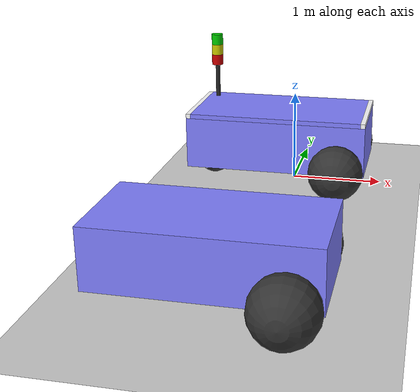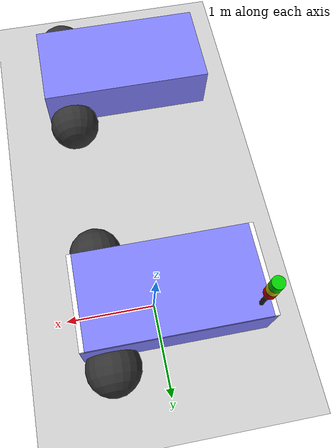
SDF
<?xml version="1.0" ?>

<sdf version="1.11">
  <world name="led_plugin">

    <physics name="1ms" type="ignored">
      <max_step_size>0.001</max_step_size>
      <real_time_factor>1.0</real_time_factor>
    </physics>
    <plugin
      filename="gz-sim-physics-system"
      name="gz::sim::systems::Physics">
    </plugin>
    <plugin
      filename="gz-sim-sensors-system"
      name="gz::sim::systems::Sensors">
      <render_engine>ogre2</render_engine>
      <background_color>0.8 0.8 0.8</background_color>
    </plugin>
    <plugin
      filename="gz-sim-user-commands-system"
      name="gz::sim::systems::UserCommands">
    </plugin>
    <plugin
      filename="gz-sim-scene-broadcaster-system"
      name="gz::sim::systems::SceneBroadcaster">
    </plugin>

    <light type="directional" name="sun">
      <cast_shadows>true</cast_shadows>
      <pose>0 0 10 0 0 0</pose>
      <diffuse>1 1 1 1</diffuse>
      <specular>0.5 0.5 0.5 1</specular>
      <intensity>0.3</intensity>
      <attenuation>
        <range>1000</range>
        <constant>0.9</constant>
        <linear>0.01</linear>
        <quadratic>0.001</quadratic>
      </attenuation>
      <direction>-0.5 0.1 -0.9</direction>
    </light>

    <model name="ground_plane">
      <static>true</static>
      <link name="link">
        <collision name="collision">
          <geometry>
            <plane>
              <normal>0 0 1</normal>
              <size>100 100</size>
            </plane>
          </geometry>
        </collision>
        <visual name="visual">
          <geometry>
            <plane>
              <normal>0 0 1</normal>
              <size>100 100</size>
            </plane>
          </geometry>
          <material>
            <ambient>0.8 0.8 0.8 1</ambient>
            <diffuse>0.8 0.8 0.8 1</diffuse>
            <specular>0.8 0.8 0.8 1</specular>
          </material>
        </visual>
      </link>
    </model>

    <model name='another_vehicle_blue'>
      <pose>0 -3.0 0.325 0 -0 0</pose>

      <link name='chassis_base'>
        <pose>-0.151427 -0 0.175 0 -0 0</pose>
        <inertial>
          <mass>1.14395</mass>
          <inertia>
            <ixx>0.126164</ixx>
            <ixy>0</ixy>
            <ixz>0</ixz>
            <iyy>0.416519</iyy>
            <iyz>0</iyz>
            <izz>0.481014</izz>
          </inertia>
        </inertial>
        <visual name='visual'>
          <geometry>
            <box>
              <size>2.0 1 0.568726</size>
            </box>
          </geometry>
          <material>
            <ambient>0.5 0.5 1.0 1</ambient>
            <diffuse>0.5 0.5 1.0 1</diffuse>
            <specular>0.0 0.0 1.0 1</specular>
          </material>
        </visual>
        <collision name='collision'>
          <geometry>
            <box>
              <size>2.0 1 0.568726</size>
            </box>
          </geometry>
        </collision>
        <light name="point_light_down" type="point">
          <pose>0 0 0.284363 0 0 0</pose>
          <diffuse>1 1 1 1</diffuse>
          <specular>0.1 0.1 0.1 1</specular>
          <intensity>5.0</intensity>
          <attenuation>
            <range>1.5</range>
            <constant>0.8</constant>
            <linear>0.5</linear>
            <quadratic>0.5</quadratic>
          </attenuation>
          <cast_shadows>true</cast_shadows>
        </light>
      </link>

      <link name='left_wheel'>
        <pose>0.554283 0.625029 -0.025 -1.5707 0 0</pose>
        <inertial>
          <mass>2</mass>
          <inertia>
            <ixx>0.145833</ixx>
            <ixy>0</ixy>
            <ixz>0</ixz>
            <iyy>0.145833</iyy>
            <iyz>0</iyz>
            <izz>0.125</izz>
          </inertia>
        </inertial>
        <visual name='visual'>
          <geometry>
            <sphere>
              <radius>0.3</radius>
            </sphere>
          </geometry>
          <material>
            <ambient>0.2 0.2 0.2 1</ambient>
            <diffuse>0.2 0.2 0.2 1</diffuse>
            <specular>0.2 0.2 0.2 1</specular>
          </material>
        </visual>
        <collision name='collision'>
          <geometry>
            <sphere>
              <radius>0.3</radius>
            </sphere>
          </geometry>
          <surface>
            <friction>
              <ode>
                <mu>1</mu>
                <mu2>1</mu2>
                <slip1>0.035</slip1>
                <slip2>0</slip2>
                <fdir1>0 0 1</fdir1>
              </ode>
              <bullet>
                <friction>1</friction>
                <friction2>1</friction2>
                <rolling_friction>0.1</rolling_friction>
              </bullet>
            </friction>
          </surface>
        </collision>
      </link>

      <link name='right_wheel'>
        <pose>0.554282 -0.625029 -0.025 -1.5707 0 0</pose>
        <inertial>
          <mass>2</mass>
          <inertia>
            <ixx>0.145833</ixx>
            <ixy>0</ixy>
            <ixz>0</ixz>
            <iyy>0.145833</iyy>
            <iyz>0</iyz>
            <izz>0.125</izz>
          </inertia>
        </inertial>
        <visual name='visual'>
          <geometry>
            <sphere>
              <radius>0.3</radius>
            </sphere>
          </geometry>
          <material>
            <ambient>0.2 0.2 0.2 1</ambient>
            <diffuse>0.2 0.2 0.2 1</diffuse>
            <specular>0.2 0.2 0.2 1</specular>
          </material>
        </visual>
        <collision name='collision'>
          <geometry>
            <sphere>
              <radius>0.3</radius>
            </sphere>
          </geometry>
          <surface>
            <friction>
              <ode>
                <mu>1</mu>
                <mu2>1</mu2>
                <slip1>0.035</slip1>
                <slip2>0</slip2>
                <fdir1>0 0 1</fdir1>
              </ode>
              <bullet>
                <friction>1</friction>
                <friction2>1</friction2>
                <rolling_friction>0.1</rolling_friction>
              </bullet>
            </friction>
          </surface>
        </collision>
      </link>

      <link name='caster'>
        <pose>-0.957138 -0 -0.125 0 -0 0</pose>
        <inertial>
          <mass>1</mass>
          <inertia>
            <ixx>0.1</ixx>
            <ixy>0</ixy>
            <ixz>0</ixz>
            <iyy>0.1</iyy>
            <iyz>0</iyz>
            <izz>0.1</izz>
          </inertia>
        </inertial>
        <visual name='visual'>
          <geometry>
            <sphere>
              <radius>0.2</radius>
            </sphere>
          </geometry>
          <material>
            <ambient>0.2 0.2 0.2 1</ambient>
            <diffuse>0.2 0.2 0.2 1</diffuse>
            <specular>0.2 0.2 0.2 1</specular>
          </material>
        </visual>
        <collision name='collision'>
          <geometry>
            <sphere>
              <radius>0.2</radius>
            </sphere>
          </geometry>
        </collision>
      </link>

      <joint name='left_wheel_joint' type='revolute'>
        <parent>chassis_base</parent>
        <child>left_wheel</child>
        <axis>
          <xyz>0 0 1</xyz>
          <limit>
            <lower>-1.79769e+308</lower>
            <upper>1.79769e+308</upper>
          </limit>
        </axis>
      </joint>

      <joint name='right_wheel_joint' type='revolute'>
        <parent>chassis_base</parent>
        <child>right_wheel</child>
        <axis>
          <xyz>0 0 1</xyz>
          <limit>
            <lower>-1.79769e+308</lower>
            <upper>1.79769e+308</upper>
          </limit>
        </axis>
      </joint>

      <joint name='caster_wheel' type='ball'>
        <parent>chassis_base</parent>
        <child>caster</child>
      </joint>

      <plugin
        filename="gz-sim-diff-drive-system"
        name="gz::sim::systems::DiffDrive">
        <left_joint>left_wheel_joint</left_joint>
        <right_joint>right_wheel_joint</right_joint>
        <wheel_separation>1.25</wheel_separation>
        <wheel_radius>0.3</wheel_radius>
        <odom_publish_frequency>1</odom_publish_frequency>
        <max_linear_acceleration>1</max_linear_acceleration>
        <min_linear_acceleration>-1</min_linear_acceleration>
        <max_angular_acceleration>2</max_angular_acceleration>
        <min_angular_acceleration>-2</min_angular_acceleration>
        <max_linear_velocity>0.5</max_linear_velocity>
        <min_linear_velocity>-0.5</min_linear_velocity>
        <max_angular_velocity>1</max_angular_velocity>
        <min_angular_velocity>-1</min_angular_velocity>
      </plugin>

      <plugin
        filename="gz-sim-led-plugin-system"
        name="gz::sim::systems::LedPlugin">

        <!-- LED group name -->
        <led_group_name>underglow_light</led_group_name>

        <!-- Using only light here for the LED as it is below the robot,
        so changing the visual would not be visible and can be omitted
        to reduce unnecessary load -->
        <led name="bottom_led">
          <light_name>another_vehicle_blue::chassis_base::point_light_down</light_name>
        </led>

        <startup_mode>led_power_breathe</startup_mode>

        <mode name="led_power_breathe">
          <active_leds>
            <led>bottom_led</led>
          </active_leds>
          <step>
            <color>0.3 1.0 0.6 1.0</color>
            <intensity>4.0</intensity>
            <on_time>0.12</on_time>
          </step>
          <step>
            <color>0.3 1.0 0.6 1.0</color>
            <intensity>3.6</intensity>
            <on_time>0.12</on_time>
          </step>
          <step>
            <color>0.3 1.0 0.6 1.0</color>
            <intensity>3.2</intensity>
            <on_time>0.12</on_time>
          </step>
          <step>
            <color>0.3 1.0 0.6 1.0</color>
            <intensity>2.8</intensity>
            <on_time>0.12</on_time>
          </step>
          <step>
            <color>0.3 1.0 0.6 1.0</color>
            <intensity>2.4</intensity>
            <on_time>0.12</on_time>
          </step>
          <step>
            <color>0.3 1.0 0.6 1.0</color>
            <intensity>2.0</intensity>
            <on_time>0.12</on_time>
          </step>
          <step>
            <color>0.3 1.0 0.6 1.0</color>
            <intensity>1.6</intensity>
            <on_time>0.12</on_time>
          </step>
          <step>
            <color>0.3 1.0 0.6 1.0</color>
            <intensity>1.2</intensity>
            <on_time>0.12</on_time>
          </step>
          <step>
            <color>0.3 1.0 0.6 1.0</color>
            <intensity>0.8</intensity>
            <on_time>0.12</on_time>
          </step>
          <step>
            <color>0.3 1.0 0.6 1.0</color>
            <intensity>0.4</intensity>
            <on_time>0.12</on_time>
          </step>
        </mode>
      </plugin>
    </model>

    <model name='vehicle_blue'>
      <pose>0 0 0.325 0 -0 0</pose>

      <link name='chassis_base'>
        <pose>-0.151427 -0 0.175 0 -0 0</pose>
        <inertial>
          <mass>1.14395</mass>
          <inertia>
            <ixx>0.126164</ixx>
            <ixy>0</ixy>
            <ixz>0</ixz>
            <iyy>0.416519</iyy>
            <iyz>0</iyz>
            <izz>0.481014</izz>
          </inertia>
        </inertial>
        <visual name='visual'>
          <geometry>
            <box>
              <size>2.0 1 0.568726</size>
            </box>
          </geometry>
          <material>
            <ambient>0.5 0.5 1.0 1</ambient>
            <diffuse>0.5 0.5 1.0 1</diffuse>
            <specular>0.0 0.0 1.0 1</specular>
          </material>
        </visual>
        <collision name='collision'>
          <geometry>
            <box>
              <size>2.0 1 0.568726</size>
            </box>
          </geometry>
        </collision>
        <light name="point_light_down" type="point">
          <pose>0 0 0.284363 0 0 0</pose>
          <diffuse>1 1 1 1</diffuse>
          <specular>0.1 0.1 0.1 1</specular>
          <intensity>2.0</intensity>
          <attenuation>
            <range>1.5</range>
            <constant>0.8</constant>
            <linear>0.5</linear>
            <quadratic>0.5</quadratic>
          </attenuation>
          <cast_shadows>true</cast_shadows>
        </light>
      </link>

      <link name="chassis_top">
        <pose>-0.151427 -0 0.484363 0 -0 0</pose>
        <inertial>
          <mass>1.14395</mass>
          <inertia>
            <ixx>0.126164</ixx>
            <ixy>0</ixy>
            <ixz>0</ixz>
            <iyy>0.416519</iyy>
            <iyz>0</iyz>
            <izz>0.481014</izz>
          </inertia>
        </inertial>
        <visual name="visual">
          <geometry>
            <box>
              <size>1.9 1 0.05</size>
            </box>
          </geometry>
          <material>
            <ambient>0.5 0.5 1.0 1</ambient>
            <diffuse>0.5 0.5 1.0 1</diffuse>
            <specular>0.0 0.0 1.0 1</specular>
          </material>
        </visual>
        <collision name="collision">
          <geometry>
            <box>
              <size>1.9 1 0.05</size>
            </box>
          </geometry>
        </collision>
      </link>

      <link name="front_led">
        <pose>-1.126427 0 0.484363 0 0 0</pose>
         <inertial auto="true" />
        <visual name="front_led_visual">
          <geometry>
            <box>
              <size>0.05 1 0.05</size>
            </box>
          </geometry>
          <material>
            <ambient>1.0 1.0 1.0 1</ambient>
            <diffuse>1.0 1.0 1.0 1</diffuse>
            <specular>1.0 1.0 1.0 1</specular>
          </material>
        </visual>
        <collision name="front_led_collision">
          <geometry>
            <box>
              <size>0.05 1 0.05</size>
            </box>
          </geometry>
        </collision>
      </link>

      <link name="back_led">
        <pose>0.823573 0 0.484363 0 0 0</pose>
        <inertial auto="true" />
        <visual name="back_led_visual">
          <geometry>
            <box>
              <size>0.05 1 0.05</size>
            </box>
          </geometry>
          <material>
            <ambient>1.0 1.0 1.0 1.0</ambient>
            <diffuse>1.0 1.0 1.0 1.0</diffuse>
            <specular>1.0 1.0 1.0 1.0</specular>
          </material>
        </visual>
        <collision name="back_led_collision">
          <geometry>
            <box>
              <size>0.05 1 0.05</size>
            </box>
          </geometry>
        </collision>
      </link>

      <link name='left_wheel'>
        <pose>0.554283 0.625029 -0.025 -1.5707 0 0</pose>
        <inertial>
          <mass>2</mass>
          <inertia>
            <ixx>0.145833</ixx>
            <ixy>0</ixy>
            <ixz>0</ixz>
            <iyy>0.145833</iyy>
            <iyz>0</iyz>
            <izz>0.125</izz>
          </inertia>
        </inertial>
        <visual name='visual'>
          <geometry>
            <sphere>
              <radius>0.3</radius>
            </sphere>
          </geometry>
          <material>
            <ambient>0.2 0.2 0.2 1</ambient>
            <diffuse>0.2 0.2 0.2 1</diffuse>
            <specular>0.2 0.2 0.2 1</specular>
          </material>
        </visual>
        <collision name='collision'>
          <geometry>
            <sphere>
              <radius>0.3</radius>
            </sphere>
          </geometry>
          <surface>
            <friction>
              <ode>
                <mu>1</mu>
                <mu2>1</mu2>
                <slip1>0.035</slip1>
                <slip2>0</slip2>
                <fdir1>0 0 1</fdir1>
              </ode>
              <bullet>
                <friction>1</friction>
                <friction2>1</friction2>
                <rolling_friction>0.1</rolling_friction>
              </bullet>
            </friction>
          </surface>
        </collision>
      </link>

      <link name='right_wheel'>
        <pose>0.554282 -0.625029 -0.025 -1.5707 0 0</pose>
        <inertial>
          <mass>2</mass>
          <inertia>
            <ixx>0.145833</ixx>
            <ixy>0</ixy>
            <ixz>0</ixz>
            <iyy>0.145833</iyy>
            <iyz>0</iyz>
            <izz>0.125</izz>
          </inertia>
        </inertial>
        <visual name='visual'>
          <geometry>
            <sphere>
              <radius>0.3</radius>
            </sphere>
          </geometry>
          <material>
            <ambient>0.2 0.2 0.2 1</ambient>
            <diffuse>0.2 0.2 0.2 1</diffuse>
            <specular>0.2 0.2 0.2 1</specular>
          </material>
        </visual>
        <collision name='collision'>
          <geometry>
            <sphere>
              <radius>0.3</radius>
            </sphere>
          </geometry>
          <surface>
            <friction>
              <ode>
                <mu>1</mu>
                <mu2>1</mu2>
                <slip1>0.035</slip1>
                <slip2>0</slip2>
                <fdir1>0 0 1</fdir1>
              </ode>
              <bullet>
                <friction>1</friction>
                <friction2>1</friction2>
                <rolling_friction>0.1</rolling_friction>
              </bullet>
            </friction>
          </surface>
        </collision>
      </link>

      <link name='caster'>
        <pose>-0.957138 -0 -0.125 0 -0 0</pose>
        <inertial>
          <mass>1</mass>
          <inertia>
            <ixx>0.1</ixx>
            <ixy>0</ixy>
            <ixz>0</ixz>
            <iyy>0.1</iyy>
            <iyz>0</iyz>
            <izz>0.1</izz>
          </inertia>
        </inertial>
        <visual name='visual'>
          <geometry>
            <sphere>
              <radius>0.2</radius>
            </sphere>
          </geometry>
          <material>
            <ambient>0.2 0.2 0.2 1</ambient>
            <diffuse>0.2 0.2 0.2 1</diffuse>
            <specular>0.2 0.2 0.2 1</specular>
          </material>
        </visual>
        <collision name='collision'>
          <geometry>
            <sphere>
              <radius>0.2</radius>
            </sphere>
          </geometry>
        </collision>
      </link>

      <joint name='left_wheel_joint' type='revolute'>
        <parent>chassis_base</parent>
        <child>left_wheel</child>
        <axis>
          <xyz>0 0 1</xyz>
          <limit>
            <lower>-1.79769e+308</lower>
            <upper>1.79769e+308</upper>
          </limit>
        </axis>
      </joint>

      <joint name='right_wheel_joint' type='revolute'>
        <parent>chassis_base</parent>
        <child>right_wheel</child>
        <axis>
          <xyz>0 0 1</xyz>
          <limit>
            <lower>-1.79769e+308</lower>
            <upper>1.79769e+308</upper>
          </limit>
        </axis>
      </joint>

      <joint name="base_to_top_joint" type="fixed">
        <parent>chassis_base</parent>
        <child>chassis_top</child>
      </joint>

      <joint name="top_to_front_led_joint" type="fixed">
        <parent>chassis_top</parent>
        <child>front_led</child>
      </joint>

      <joint name="top_to_back_led_joint" type="fixed">
        <parent>chassis_top</parent>
        <child>back_led</child>
      </joint>

      <joint name='caster_wheel' type='ball'>
        <parent>chassis_base</parent>
        <child>caster</child>
      </joint>

      <plugin
        filename="gz-sim-diff-drive-system"
        name="gz::sim::systems::DiffDrive">
        <left_joint>left_wheel_joint</left_joint>
        <right_joint>right_wheel_joint</right_joint>
        <wheel_separation>1.25</wheel_separation>
        <wheel_radius>0.3</wheel_radius>
        <odom_publish_frequency>1</odom_publish_frequency>
        <max_linear_acceleration>1</max_linear_acceleration>
        <min_linear_acceleration>-1</min_linear_acceleration>
        <max_angular_acceleration>2</max_angular_acceleration>
        <min_angular_acceleration>-2</min_angular_acceleration>
        <max_linear_velocity>0.5</max_linear_velocity>
        <min_linear_velocity>-0.5</min_linear_velocity>
        <max_angular_velocity>1</max_angular_velocity>
        <min_angular_velocity>-1</min_angular_velocity>
      </plugin>

      <plugin
        filename="gz-sim-led-plugin-system"
        name="gz::sim::systems::LedPlugin">

        <!-- LED group name -->
        <led_group_name>status_lights</led_group_name>

        <!-- All the LEDs belonging to this group/model -->
        <led name="back_led">
          <visual_name>vehicle_blue::back_led::back_led_visual</visual_name>
        </led>
        <led name="front_led">
          <visual_name>vehicle_blue::front_led::front_led_visual</visual_name>
        </led>
        <!-- Using only light here for the LED as it is below the robot,
        so changing the visual would not be visible and can be omitted
        to reduce unnecessary load -->
        <led name="bottom_led">
          <light_name>vehicle_blue::chassis_base::point_light_down</light_name>
        </led>

        <startup_mode>idle</startup_mode>

        <mode name="idle">
          <step always_on="false">
            <color>0 1 1 1</color>
            <on_time>1.0</on_time>
            <intensity>2.0</intensity>
          </step>
          <step always_on="false">
            <color>1 1 1 1</color>
            <on_time>1.0</on_time>
            <intensity>0.0</intensity>
          </step>
        </mode>

        <mode name="emergency">
          <step always_on="false">
            <color>1 0 0 1</color>
            <on_time>1.0</on_time>
            <intensity>2.0</intensity>
          </step>
          <step always_on="false">
            <color>1 1 1 1</color>
            <on_time>1.0</on_time>
            <intensity>0.0</intensity>
          </step>
        </mode>

        <mode name="front_navigation">
          <active_leds>
            <led>front_led</led>
          </active_leds>
          <step always_on="true">
            <color>0 1 1 1</color>
          </step>
        </mode>

        <mode name="reverse_navigation">
          <active_leds>
            <led>back_led</led>
          </active_leds>
          <step always_on="true">
            <color>0 1 1 1</color>
          </step>
        </mode>
      </plugin>
    </model>

    <model name="tower_lamp">
      <pose>-1.0 0.35 1.0 0 0 0</pose>

      <link name="lamp_stand">
        <pose>0 0 0.0 0 0 0</pose>

        <inertial>
          <mass>0.3</mass>
          <inertia>
            <ixx>0.0006</ixx>
            <iyy>0.0006</iyy>
            <izz>0.0003</izz>
          </inertia>
        </inertial>

        <visual name="lamp_stand_visual">
          <geometry>
            <cylinder>
              <radius>0.025</radius>
              <length>0.50</length>
            </cylinder>
          </geometry>
          <material>
            <ambient>0.1 0.1 0.1 1</ambient>
            <diffuse>0.15 0.15 0.15 1</diffuse>
            <specular>0.3 0.3 0.3 1</specular>
          </material>
        </visual>

        <collision name="lamp_stand_collision">
          <geometry>
            <cylinder>
              <radius>0.025</radius>
              <length>0.50</length>
            </cylinder>
          </geometry>
        </collision>
      </link>

      <link name="lamp_red">
        <pose>0 0 0.28 0 0 0</pose>

        <inertial>
          <mass>0.2</mass>
          <inertia>
            <ixx>0.0004</ixx>
            <iyy>0.0004</iyy>
            <izz>0.0002</izz>
          </inertia>
        </inertial>

        <visual name="lamp_red_visual">
          <geometry>
            <cylinder>
              <radius>0.065</radius>
              <length>0.12</length>
            </cylinder>
          </geometry>
          <material>
            <ambient>0.4 0.0 0.0 1</ambient>
            <diffuse>0.8 0.0 0.0 1</diffuse>
            <specular>0.3 0.3 0.3 1</specular>
            <emissive>0.0 0.0 0.0 1</emissive>
          </material>
        </visual>

        <collision name="lamp_red_collision">
          <geometry>
            <cylinder>
              <radius>0.065</radius>
              <length>0.12</length>
            </cylinder>
          </geometry>
        </collision>

        <light name="emergency_light" type="point">
          <pose>0 0 0.0 0 0 0</pose>
          <diffuse>0.8 0.0 0 1</diffuse>
          <specular>0.1 0.1 0.1 1</specular>
          <intensity>5.0</intensity>
          <attenuation>
            <range>1.5</range>
            <constant>0.8</constant>
            <linear>0.5</linear>
            <quadratic>0.5</quadratic>
          </attenuation>
          <cast_shadows>true</cast_shadows>
        </light>
      </link>

      <link name="lamp_yellow">
        <pose>0 0 0.40 0 0 0</pose>

        <inertial>
          <mass>0.2</mass>
          <inertia>
            <ixx>0.0004</ixx>
            <iyy>0.0004</iyy>
            <izz>0.0002</izz>
          </inertia>
        </inertial>

        <visual name="lamp_yellow_visual">
          <geometry>
            <cylinder>
              <radius>0.065</radius>
              <length>0.12</length>
            </cylinder>
          </geometry>
          <material>
            <ambient>0.4 0.4 0.0 1</ambient>
            <diffuse>0.8 0.8 0.0 1</diffuse>
            <specular>0.3 0.3 0.3 1</specular>
            <emissive>0.0 0.0 0.0 1</emissive>
          </material>
        </visual>

        <collision name="lamp_yellow_collision">
          <geometry>
            <cylinder>
              <radius>0.065</radius>
              <length>0.12</length>
            </cylinder>
          </geometry>
        </collision>

        <light name="warning_light" type="point">
          <pose>0 0 0.0 0 0 0</pose>
          <diffuse>0.8 0.8 0 1</diffuse>
          <specular>0.1 0.1 0.1 1</specular>
          <intensity>5.0</intensity>
          <attenuation>
            <range>1.5</range>
            <constant>0.8</constant>
            <linear>0.5</linear>
            <quadratic>0.5</quadratic>
          </attenuation>
          <cast_shadows>true</cast_shadows>
        </light>
      </link>

      <link name="lamp_green">
        <pose>0 0 0.52 0 0 0</pose>

        <inertial>
          <mass>0.2</mass>
          <inertia>
            <ixx>0.0004</ixx>
            <iyy>0.0004</iyy>
            <izz>0.0002</izz>
          </inertia>
        </inertial>

        <visual name="lamp_green_visual">
          <geometry>
            <cylinder>
              <radius>0.065</radius>
              <length>0.12</length>
            </cylinder>
          </geometry>
          <material>
            <ambient>0.0 0.4 0.0 1</ambient>
            <diffuse>0.0 0.8 0.0 1</diffuse>
            <specular>0.3 0.3 0.3 1</specular>
            <emissive>0.0 0.0 0.0 1</emissive>
          </material>
        </visual>

        <collision name="lamp_green_collision">
          <geometry>
            <cylinder>
              <radius>0.065</radius>
              <length>0.12</length>
            </cylinder>
          </geometry>
        </collision>

        <light name="ready_light" type="point">
          <pose>0 0 0.0 0 0 0</pose>
          <diffuse>0.0 0.8 0 1</diffuse>
          <specular>0.1 0.1 0.1 1</specular>
          <intensity>2.0</intensity>
          <attenuation>
            <range>1.5</range>
            <constant>0.8</constant>
            <linear>0.5</linear>
            <quadratic>0.5</quadratic>
          </attenuation>
          <cast_shadows>true</cast_shadows>
        </light>
      </link>

      <joint name="stand_to_red" type="fixed">
        <parent>lamp_stand</parent>
        <child>lamp_red</child>
      </joint>

      <joint name="red_to_yellow" type="fixed">
        <parent>lamp_red</parent>
        <child>lamp_yellow</child>
      </joint>

      <joint name="yellow_to_green" type="fixed">
        <parent>lamp_yellow</parent>
        <child>lamp_green</child>
      </joint>

      <plugin
        filename="gz-sim-led-plugin-system"
        name="gz::sim::systems::LedPlugin">

        <led_group_name>signal_lights</led_group_name>

        <led name="emergency_led">
          <visual_name>lamp_red::lamp_red_visual</visual_name>
          <light_name>lamp_red::emergency_light</light_name>
          <default_state>
            <color>0.3 0 0 1.0</color>
            <intensity>0.0</intensity>
          </default_state>
        </led>
        <led name="warning_led">
          <visual_name>lamp_yellow::lamp_yellow_visual</visual_name>
          <light_name>lamp_yellow::warning_light</light_name>
          <default_state>
            <color>0.3 0.3 0 1.0</color>
            <intensity>0.0</intensity>
          </default_state>
        </led>
        <led name="ready_led">
          <visual_name>lamp_green::lamp_green_visual</visual_name>
          <light_name>lamp_green::ready_light</light_name>
          <default_state>
            <color>0.0 0.3 0 1.0</color>
            <intensity>0.0</intensity>
          </default_state>
        </led>

        <startup_mode>ready</startup_mode>

        <mode name="ready">
          <active_leds>
            <led>ready_led</led>
          </active_leds>
          <step always_on="false">
            <color>0.0 1.0 0.0 1</color>
            <on_time>1.0</on_time>
            <intensity>2.0</intensity>
          </step>
          <step always_on="false">
            <color>0.0 0.3 0.0 1</color>
            <on_time>1.0</on_time>
            <intensity>0.0</intensity>
          </step>
        </mode>

        <mode name="emergency">
          <active_leds>
            <led>emergency_led</led>
          </active_leds>
          <step always_on="false">
            <color>1.0 0.0 0.0 1</color>
            <on_time>1.0</on_time>
            <intensity>2.0</intensity>
          </step>
          <step always_on="false">
            <color>0.3 0.0 0.0 1</color>
            <on_time>1.0</on_time>
            <intensity>0.0</intensity>
          </step>
        </mode>

        <mode name="warning">
          <active_leds>
            <led>warning_led</led>
          </active_leds>
          <step always_on="false">
            <color>0.8 0.8 0.0 1</color>
            <on_time>1.0</on_time>
            <intensity>2.0</intensity>
          </step>
          <step always_on="false">
            <color>0.3 0.3 0.0 1</color>
            <on_time>1.0</on_time>
            <intensity>0.0</intensity>
          </step>
        </mode>

      </plugin>
    </model>
  </world>
</sdf>
